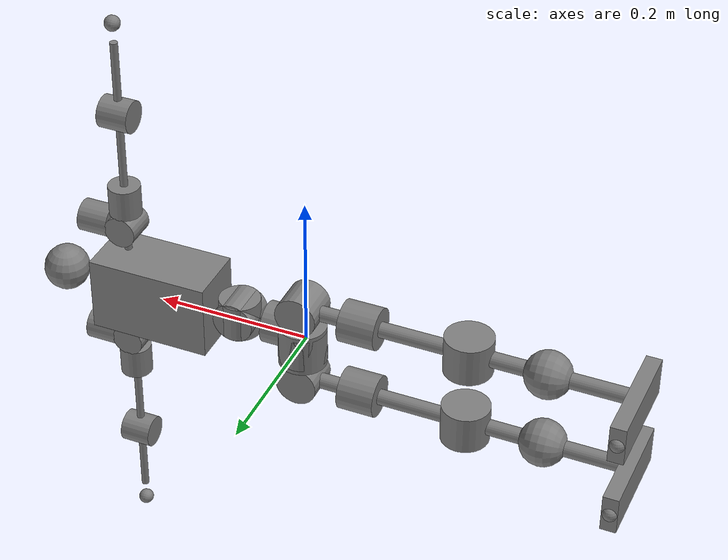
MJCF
<mujoco model="bvh_human_3dof_tpose">
  <compiler angle="radian" meshdir="meshes/"/>

  <worldbody>
    <body name="Hips">
      <inertial pos="0 0 0" mass="0.1" diaginertia="2.5e-05 2.5e-05 2.5e-05"/>
      <joint name="floating_base_joint" type="free"/>
      <geom size="0.025" contype="0" conaffinity="0" group="1" density="0"/>
      <geom size="0.025"/>
      <geom size="0.025"/>
      <body name="LeftUpLeg_rz" pos="0.00051729 0.0092891 0.0527425" quat="-2.32051e-08 0 0 -1">
        <inertial pos="0 0 -0.05" mass="0.5" diaginertia="0.0001922 0.0001922 0.0001922"/>
        <joint name="Hips_to_LeftUpLeg_rz" pos="0 0 0" axis="0 0 1" range="-3.14159 3.14159" actuatorfrcrange="-55 55"/>
        <geom size="0.031 0.025" pos="0 0 -0.05" type="cylinder" contype="0" conaffinity="0" group="1" density="0"/>
        <geom size="0.031 0.025" pos="0 0 -0.05" type="cylinder"/>
        <body name="LeftUpLeg_ry">
          <inertial pos="0 0 0" mass="0.4" diaginertia="0.00011664 0.00011664 0.00011664"/>
          <joint name="LeftUpLeg_rz_to_LeftUpLeg_ry" pos="0 0 0" axis="0 1 0" range="-3.14159 3.14159" actuatorfrcrange="-25 25"/>
          <geom size="0.027 0.024" quat="0.707107 -0.707107 0 0" type="cylinder" contype="0" conaffinity="0" group="1" density="0"/>
          <geom size="0.027 0.024" quat="0.707107 -0.707107 0 0" type="cylinder"/>
          <body name="LeftUpLeg" quat="-2.32051e-08 1 0 0">
            <inertial pos="0.08 0 0" mass="0.4" diaginertia="0.0016 0.0016 0.0016"/>
            <joint name="LeftUpLeg_ry_to_LeftUpLeg" pos="0 0 0" axis="1 0 0" range="-3.14159 3.14159" actuatorfrcrange="-25 25"/>
            <geom size="0.01 0.1" pos="0.1 0 0" quat="0.707388 0 0.706825 0" type="cylinder" contype="0" conaffinity="0" group="1" density="0"/>
            <geom size="0.027 0.024" pos="0.08 0 0" quat="0.707107 0 0.707107 0" type="cylinder" contype="0" conaffinity="0" group="1" density="0"/>
            <geom size="0.027 0.024" pos="0.08 0 0" quat="0.707107 0 0.707107 0" type="cylinder"/>
            <body name="LeftLeg_rz" pos="0.2175 -1e-07 1e-08">
              <inertial pos="0 0 0" mass="0.5" diaginertia="0.0001922 0.0001922 0.0001922"/>
              <joint name="LeftUpLeg_to_LeftLeg_rz" pos="0 0 0" axis="0 0 1" range="-3.14159 3.14159" actuatorfrcrange="-55 55"/>
              <geom size="0.031 0.025" type="cylinder" contype="0" conaffinity="0" group="1" density="0"/>
              <geom size="0.031 0.025" type="cylinder"/>
              <body name="LeftLeg_ry">
                <inertial pos="0 0 0" mass="0.01" diaginertia="4e-07 4e-07 4e-07"/>
                <body name="LeftLeg">
                  <inertial pos="0.1 0 0" mass="0.8" diaginertia="0.0032 0.0032 0.0032"/>
                  <geom size="0.01 0.1" pos="0.1 0 0" quat="0.707388 0 0.706825 0" type="cylinder" contype="0" conaffinity="0" group="1" density="0"/>
                  <geom size="0.03" pos="0.1 0 0" quat="0.707388 0 0.706825 0" contype="0" conaffinity="0" group="1" density="0"/>
                  <geom size="0.03" pos="0.1 0 0" quat="0.707388 0 0.706825 0"/>
                  <body name="LeftFoot_rz" pos="0.211861 -2e-08 1e-08" quat="0.707107 0 0 0.707107">
                    <inertial pos="0 0 0" mass="0.01" diaginertia="1.6e-06 1.6e-06 1.6e-06"/>
                    <joint name="LeftLeg_to_LeftFoot_rz" pos="0 0 0" axis="0 0 1" range="-3.14159 3.14159" actuatorfrcrange="-50 50"/>
                    <geom size="0.005 0.02" type="cylinder" contype="0" conaffinity="0" group="1" density="0"/>
                    <body name="LeftFoot_ry">
                      <inertial pos="0 0 0" mass="0.01" diaginertia="4e-07 4e-07 4e-07"/>
                      <body name="LeftFoot">
                        <inertial pos="0 0 0" mass="0.01" diaginertia="1.96e-05 1.96e-05 1.96e-05"/>
                        <joint name="LeftFoot_ry_to_LeftFoot" pos="0 0 0" axis="1 0 0" range="-3.14159 3.14159" actuatorfrcrange="-50 50"/>
                        <geom size="0.07 0.01 0.025" pos="0.02 0 0" type="box" contype="0" conaffinity="0" group="1" density="0"/>
                        <geom size="0.005 0.02" quat="0.707107 0 0.707107 0" type="cylinder" contype="0" conaffinity="0" group="1" density="0"/>
                        <geom size="0.07 0.01 0.025" pos="0.02 0 0" type="box"/>
                        <body name="LeftToe_rz" pos="0.0865 1e-08 3e-08">
                          <inertial pos="0 0 0" mass="0.01" diaginertia="4e-07 4e-07 4e-07"/>
                          <body name="LeftToe_ry">
                            <inertial pos="0 0 0" mass="0.01" diaginertia="4e-07 4e-07 4e-07"/>
                            <body name="LeftToe">
                              <inertial pos="0 0 0" mass="0.01" diaginertia="4e-07 4e-07 4e-07"/>
                              <geom size="0.01" contype="0" conaffinity="0" group="1" density="0"/>
                              <geom size="0.01"/>
                              <body name="LeftToe_End">
                                <inertial pos="0 0 0" mass="0.01" diaginertia="4e-07 4e-07 4e-07"/>
                                <geom size="0.01" contype="0" conaffinity="0" group="1" density="0"/>
                                <geom size="0.01"/>
                              </body>
                            </body>
                          </body>
                        </body>
                      </body>
                    </body>
                  </body>
                </body>
              </body>
            </body>
          </body>
        </body>
      </body>
      <body name="RightUpLeg_rz" pos="0.00051729 0.00928909 -0.0527425" quat="-2.32051e-08 0 0 -1">
        <inertial pos="0 0 0.05" mass="0.5" diaginertia="0.0001922 0.0001922 0.0001922"/>
        <joint name="Hips_to_RightUpLeg_rz" pos="0 0 0" axis="0 0 1" range="-3.14159 3.14159" actuatorfrcrange="-100 100"/>
        <geom size="0.031 0.025" pos="0 0 0.05" type="cylinder" contype="0" conaffinity="0" group="1" density="0"/>
        <geom size="0.031 0.025" pos="0 0 0.05" type="cylinder"/>
        <body name="RightUpLeg_ry">
          <inertial pos="0 0 0" mass="0.4" diaginertia="0.00011664 0.00011664 0.00011664"/>
          <joint name="RightUpLeg_rz_to_RightUpLeg_ry" pos="0 0 0" axis="0 1 0" range="-3.14159 3.14159" actuatorfrcrange="-100 100"/>
          <geom size="0.027 0.024" quat="0.707107 -0.707107 0 0" type="cylinder" contype="0" conaffinity="0" group="1" density="0"/>
          <geom size="0.027 0.024" quat="0.707107 -0.707107 0 0" type="cylinder"/>
          <body name="RightUpLeg" quat="-2.32051e-08 -1 0 0">
            <inertial pos="0.08 0 0" mass="0.4" diaginertia="0.0016 0.0016 0.0016"/>
            <joint name="RightUpLeg_ry_to_RightUpLeg" pos="0 0 0" axis="1 0 0" range="-3.14159 3.14159" actuatorfrcrange="-100 100"/>
            <geom size="0.01 0.1" pos="0.1 0 0" quat="0.707388 0 0.706825 0" type="cylinder" contype="0" conaffinity="0" group="1" density="0"/>
            <geom size="0.027 0.024" pos="0.08 0 0" quat="0.707107 0 0.707107 0" type="cylinder" contype="0" conaffinity="0" group="1" density="0"/>
            <geom size="0.027 0.024" pos="0.08 0 0" quat="0.707107 0 0.707107 0" type="cylinder"/>
            <body name="RightLeg_rz" pos="0.2175 -7e-08 5e-08">
              <inertial pos="0 0 0" mass="0.5" diaginertia="0.0001922 0.0001922 0.0001922"/>
              <joint name="RightUpLeg_to_RightLeg_rz" pos="0 0 0" axis="0 0 1" range="-3.14159 3.14159" actuatorfrcrange="-100 100"/>
              <geom size="0.031 0.025" type="cylinder" contype="0" conaffinity="0" group="1" density="0"/>
              <geom size="0.031 0.025" type="cylinder"/>
              <body name="RightLeg_ry">
                <inertial pos="0 0 0" mass="0.01" diaginertia="4e-07 4e-07 4e-07"/>
                <body name="RightLeg">
                  <inertial pos="0.1 0 0" mass="0.8" diaginertia="0.0032 0.0032 0.0032"/>
                  <geom size="0.01 0.1" pos="0.1 0 0" quat="0.707388 0 0.706825 0" type="cylinder" contype="0" conaffinity="0" group="1" density="0"/>
                  <geom size="0.03" pos="0.1 0 0" quat="0.707388 0 0.706825 0" contype="0" conaffinity="0" group="1" density="0"/>
                  <geom size="0.03" pos="0.1 0 0" quat="0.707388 0 0.706825 0"/>
                  <body name="RightFoot_rz" pos="0.211861 -4e-08 5e-08" quat="0.707107 0 0 0.707107">
                    <inertial pos="0 0 0" mass="0.01" diaginertia="1.6e-06 1.6e-06 1.6e-06"/>
                    <joint name="RightLeg_to_RightFoot_rz" pos="0 0 0" axis="0 0 1" range="-3.14159 3.14159" actuatorfrcrange="-100 100"/>
                    <geom size="0.005 0.02" type="cylinder" contype="0" conaffinity="0" group="1" density="0"/>
                    <body name="RightFoot_ry">
                      <inertial pos="0 0 0" mass="0.01" diaginertia="4e-07 4e-07 4e-07"/>
                      <body name="RightFoot">
                        <inertial pos="0 0 0" mass="0.01" diaginertia="1.96e-05 1.96e-05 1.96e-05"/>
                        <joint name="RightFoot_ry_to_RightFoot" pos="0 0 0" axis="1 0 0" range="-3.14159 3.14159" actuatorfrcrange="-100 100"/>
                        <geom size="0.07 0.01 0.025" pos="0.02 0 0" type="box" contype="0" conaffinity="0" group="1" density="0"/>
                        <geom size="0.005 0.02" quat="0.707107 0 0.707107 0" type="cylinder" contype="0" conaffinity="0" group="1" density="0"/>
                        <geom size="0.07 0.01 0.025" pos="0.02 0 0" type="box"/>
                        <body name="RightToe_rz" pos="0.0865 -2e-08 0">
                          <inertial pos="0 0 0" mass="0.01" diaginertia="4e-07 4e-07 4e-07"/>
                          <body name="RightToe_ry">
                            <inertial pos="0 0 0" mass="0.01" diaginertia="4e-07 4e-07 4e-07"/>
                            <body name="RightToe">
                              <inertial pos="0 0 0" mass="0.01" diaginertia="4e-07 4e-07 4e-07"/>
                              <geom size="0.01" contype="0" conaffinity="0" group="1" density="0"/>
                              <geom size="0.01"/>
                              <body name="RightToe_End">
                                <inertial pos="0 0 0" mass="0.01" diaginertia="4e-07 4e-07 4e-07"/>
                                <geom size="0.01" contype="0" conaffinity="0" group="1" density="0"/>
                                <geom size="0.01"/>
                              </body>
                            </body>
                          </body>
                        </body>
                      </body>
                    </body>
                  </body>
                </body>
              </body>
            </body>
          </body>
        </body>
      </body>
      <body name="Spine_rz" pos="0.0345098 -0.0130187 1e-08">
        <inertial pos="0 0 0" mass="0.01" diaginertia="4e-07 4e-07 4e-07"/>
        <body name="Spine_ry">
          <inertial pos="0 0 0" mass="0.01" diaginertia="4e-07 4e-07 4e-07"/>
          <body name="Spine">
            <inertial pos="0 0 0" mass="0.4" diaginertia="1.6e-05 1.6e-05 1.6e-05"/>
            <joint name="Spine_ry_to_Spine" pos="0 0 0" axis="1 0 0" range="-3.14159 3.14159" actuatorfrcrange="-100 100"/>
            <geom size="0.01" contype="0" conaffinity="0" group="1" density="0"/>
            <geom size="0.027 0.024" quat="0.707107 0 0.707107 0" type="cylinder" contype="0" conaffinity="0" group="1" density="0"/>
            <geom size="0.01"/>
            <geom size="0.027 0.024" quat="0.707107 0 0.707107 0" type="cylinder"/>
            <body name="Spine1_rz" pos="0.0629405 8e-08 -2e-08">
              <inertial pos="0 0 0" mass="0.4" diaginertia="0.00011664 0.00011664 0.00011664"/>
              <joint name="Spine_to_Spine1_rz" pos="0 0 0" axis="0 0 1" range="-3.14159 3.14159" actuatorfrcrange="-100 100"/>
              <geom size="0.027 0.024" type="cylinder" contype="0" conaffinity="0" group="1" density="0"/>
              <geom size="0.027 0.024" type="cylinder"/>
              <body name="Spine1_ry">
                <inertial pos="0 0 0" mass="0.4" diaginertia="0.00011664 0.00011664 0.00011664"/>
                <joint name="Spine1_rz_to_Spine1_ry" pos="0 0 0" axis="0 1 0" range="-3.14159 3.14159" actuatorfrcrange="-100 100"/>
                <geom size="0.027 0.024" quat="0.707107 -0.707107 0 0" type="cylinder" contype="0" conaffinity="0" group="1" density="0"/>
                <geom size="0.027 0.024" quat="0.707107 -0.707107 0 0" type="cylinder"/>
                <body name="Spine1">
                  <inertial pos="0 0 0" mass="0.01" diaginertia="4e-07 4e-07 4e-07"/>
                  <geom size="0.01" contype="0" conaffinity="0" group="1" density="0"/>
                  <geom size="0.01"/>
                  <body name="Spine2_rz" pos="0.061716 -6e-08 -2e-08">
                    <inertial pos="0 0 0" mass="0.01" diaginertia="4e-07 4e-07 4e-07"/>
                    <body name="Spine2_ry">
                      <inertial pos="0 0 0" mass="0.01" diaginertia="4e-07 4e-07 4e-07"/>
                      <body name="Spine2">
                        <inertial pos="0.05 0 0" mass="2.01" diaginertia="2.56e-05 2.56e-05 2.56e-05"/>
                        <geom size="0.05 0.04 0.08" pos="0.05 0 0" quat="0.707388 0 0.706825 0" type="box" contype="0" conaffinity="0" group="1" density="0"/>
                        <geom size="0.05 0.04 0.08" pos="0.05 0 0" quat="0.707388 0 0.706825 0" type="box"/>
                        <body name="Neck_rz" pos="0.129164 4e-08 3e-08">
                          <inertial pos="0 0 0" mass="0.01" diaginertia="4e-07 4e-07 4e-07"/>
                          <body name="Neck_ry">
                            <inertial pos="0 0 0" mass="0.01" diaginertia="4e-07 4e-07 4e-07"/>
                            <body name="Neck">
                              <inertial pos="0 0 0" mass="0.01" diaginertia="4e-07 4e-07 4e-07"/>
                              <geom size="0.01" contype="0" conaffinity="0" group="1" density="0"/>
                              <geom size="0.01"/>
                              <body name="Head_rz" pos="0.0588331 -2e-08 -1e-08">
                                <inertial pos="0 0 0" mass="0.01" diaginertia="4e-07 4e-07 4e-07"/>
                                <body name="Head_ry">
                                  <inertial pos="0 0 0" mass="0.01" diaginertia="4e-07 4e-07 4e-07"/>
                                  <body name="Head">
                                    <inertial pos="0 0 0" mass="0.01" diaginertia="3.6e-06 3.6e-06 3.6e-06"/>
                                    <geom size="0.03" contype="0" conaffinity="0" group="1" density="0"/>
                                    <geom size="0.03"/>
                                    <body name="Head_End">
                                      <inertial pos="0 0 0" mass="0.01" diaginertia="4e-07 4e-07 4e-07"/>
                                      <geom size="0.01" contype="0" conaffinity="0" group="1" density="0"/>
                                      <geom size="0.01"/>
                                    </body>
                                  </body>
                                </body>
                              </body>
                            </body>
                          </body>
                        </body>
                        <body name="LeftShoulder_rz" pos="0.0987295 -0.00740185 0.0300006" quat="0.707107 0 0 -0.707107">
                          <inertial pos="0 0 0" mass="0.01" diaginertia="4e-07 4e-07 4e-07"/>
                          <body name="LeftShoulder_ry" quat="0.707107 0 -0.707107 0">
                            <inertial pos="0 0 0" mass="0.01" diaginertia="4e-07 4e-07 4e-07"/>
                            <body name="LeftShoulder" quat="0.707107 -0.707107 0 0">
                              <inertial pos="0 0 0" mass="0.01" diaginertia="2.5e-06 2.5e-06 2.5e-06"/>
                              <geom size="0.005 0.025" pos="0.025 0 0" quat="0.707388 0 0.706825 0" type="cylinder" contype="0" conaffinity="0" group="1" density="0"/>
                              <body name="LeftArm_rz" pos="0.0564206 -6e-08 -4e-08">
                                <inertial pos="0 0 0.04" mass="0.3" diaginertia="5.292e-05 5.292e-05 5.292e-05"/>
                                <joint name="LeftShoulder_to_LeftArm_rz" pos="0 0 0" axis="0 0 1" range="-3.14159 3.14159" actuatorfrcrange="-100 100"/>
                                <geom size="0.021 0.0205" pos="0 0 0.04" type="cylinder" contype="0" conaffinity="0" group="1" density="0"/>
                                <geom size="0.021 0.0205" pos="0 0 0.04" type="cylinder"/>
                                <body name="LeftArm_ry">
                                  <inertial pos="0 0 0" mass="0.3" diaginertia="5.292e-05 5.292e-05 5.292e-05"/>
                                  <joint name="LeftArm_rz_to_LeftArm_ry" pos="0 0 0" axis="0 1 0" range="-3.14159 3.14159" actuatorfrcrange="-100 100"/>
                                  <geom size="0.021 0.0205" quat="0.707107 -0.707107 0 0" type="cylinder" contype="0" conaffinity="0" group="1" density="0"/>
                                  <geom size="0.021 0.0205" quat="0.707107 -0.707107 0 0" type="cylinder"/>
                                  <body name="LeftArm">
                                    <inertial pos="0.04 0 0" mass="0.3" diaginertia="0.000675 0.000675 0.000675"/>
                                    <joint name="LeftArm_ry_to_LeftArm" pos="0 0 0" axis="1 0 0" range="-3.14159 3.14159" actuatorfrcrange="-100 100"/>
                                    <geom size="0.005 0.075" pos="0.075 0 0" quat="0.707388 0 0.706825 0" type="cylinder" contype="0" conaffinity="0" group="1" density="0"/>
                                    <geom size="0.021 0.0205" pos="0.04 0 0" quat="0.707107 0 0.707107 0" type="cylinder" contype="0" conaffinity="0" group="1" density="0"/>
                                    <geom size="0.021 0.0205" pos="0.04 0 0" quat="0.707107 0 0.707107 0" type="cylinder"/>
                                    <body name="LeftForeArm_rz" pos="0.165 1e-08 1.1e-07">
                                      <inertial pos="0 0 0" mass="0.3" diaginertia="5.292e-05 5.292e-05 5.292e-05"/>
                                      <joint name="LeftArm_to_LeftForeArm_rz" pos="0 0 0" axis="0 0 1" range="-3.14159 3.14159" actuatorfrcrange="-100 100"/>
                                      <geom size="0.021 0.0205" type="cylinder" contype="0" conaffinity="0" group="1" density="0"/>
                                      <geom size="0.021 0.0205" type="cylinder"/>
                                      <body name="LeftForeArm_ry">
                                        <inertial pos="0 0 0" mass="0.01" diaginertia="4e-07 4e-07 4e-07"/>
                                        <body name="LeftForeArm">
                                          <inertial pos="0 0 0" mass="0.01" diaginertia="1e-05 1e-05 1e-05"/>
                                          <geom size="0.005 0.05" pos="0.05 0 0" quat="0.707388 0 0.706825 0" type="cylinder" contype="0" conaffinity="0" group="1" density="0"/>
                                          <body name="LeftHand_rz" pos="0.126 3e-08 7e-08">
                                            <inertial pos="0 0 0" mass="0.01" diaginertia="4e-07 4e-07 4e-07"/>
                                            <body name="LeftHand_ry">
                                              <inertial pos="0 0 0" mass="0.01" diaginertia="4e-07 4e-07 4e-07"/>
                                              <body name="LeftHand">
                                                <inertial pos="0 0 0" mass="0.01" diaginertia="4e-07 4e-07 4e-07"/>
                                                <geom size="0.01" contype="0" conaffinity="0" group="1" density="0"/>
                                                <geom size="0.01"/>
                                                <body name="LeftHand_End">
                                                  <inertial pos="0 0 0" mass="0.01" diaginertia="4e-07 4e-07 4e-07"/>
                                                  <geom size="0.01" contype="0" conaffinity="0" group="1" density="0"/>
                                                  <geom size="0.01"/>
                                                </body>
                                              </body>
                                            </body>
                                          </body>
                                        </body>
                                      </body>
                                    </body>
                                  </body>
                                </body>
                              </body>
                            </body>
                          </body>
                        </body>
                        <body name="RightShoulder_rz" pos="0.0987305 -0.00740189 -0.0300003" quat="0.707107 0 0 0.707107">
                          <inertial pos="0 0 0" mass="0.01" diaginertia="4e-07 4e-07 4e-07"/>
                          <body name="RightShoulder_ry" quat="0.707107 0 0.707107 0">
                            <inertial pos="0 0 0" mass="0.01" diaginertia="4e-07 4e-07 4e-07"/>
                            <body name="RightShoulder" quat="0.707107 -0.707107 0 0">
                              <inertial pos="0 0 0" mass="0.01" diaginertia="2.5e-06 2.5e-06 2.5e-06"/>
                              <geom size="0.005 0.025" pos="0.025 0 0" quat="0.707388 0 0.706825 0" type="cylinder" contype="0" conaffinity="0" group="1" density="0"/>
                              <body name="RightArm_rz" pos="0.0564207 -1.7e-07 -4e-08">
                                <inertial pos="0 0 -0.04" mass="0.3" diaginertia="5.292e-05 5.292e-05 5.292e-05"/>
                                <joint name="RightShoulder_to_RightArm_rz" pos="0 0 0" axis="0 0 1" range="-3.14159 3.14159" actuatorfrcrange="-100 100"/>
                                <geom size="0.021 0.0205" pos="0 0 -0.04" type="cylinder" contype="0" conaffinity="0" group="1" density="0"/>
                                <geom size="0.021 0.0205" pos="0 0 -0.04" type="cylinder"/>
                                <body name="RightArm_ry">
                                  <inertial pos="0 0 0" mass="0.3" diaginertia="5.292e-05 5.292e-05 5.292e-05"/>
                                  <joint name="RightArm_rz_to_RightArm_ry" pos="0 0 0" axis="0 1 0" range="-3.14159 3.14159" actuatorfrcrange="-100 100"/>
                                  <geom size="0.021 0.0205" quat="0.707107 -0.707107 0 0" type="cylinder" contype="0" conaffinity="0" group="1" density="0"/>
                                  <geom size="0.021 0.0205" quat="0.707107 -0.707107 0 0" type="cylinder"/>
                                  <body name="RightArm">
                                    <inertial pos="0.04 0 0" mass="0.3" diaginertia="0.000675 0.000675 0.000675"/>
                                    <joint name="RightArm_ry_to_RightArm" pos="0 0 0" axis="1 0 0" range="-3.14159 3.14159" actuatorfrcrange="-100 100"/>
                                    <geom size="0.005 0.075" pos="0.075 0 0" quat="0.707388 0 0.706825 0" type="cylinder" contype="0" conaffinity="0" group="1" density="0"/>
                                    <geom size="0.021 0.0205" pos="0.04 0 0" quat="0.707107 0 0.707107 0" type="cylinder" contype="0" conaffinity="0" group="1" density="0"/>
                                    <geom size="0.021 0.0205" pos="0.04 0 0" quat="0.707107 0 0.707107 0" type="cylinder"/>
                                    <body name="RightForeArm_rz" pos="0.165 1e-07 3e-08">
                                      <inertial pos="0 0 0" mass="0.3" diaginertia="5.292e-05 5.292e-05 5.292e-05"/>
                                      <joint name="RightArm_to_RightForeArm_rz" pos="0 0 0" axis="0 0 1" range="-3.14159 3.14159" actuatorfrcrange="-100 100"/>
                                      <geom size="0.021 0.0205" type="cylinder" contype="0" conaffinity="0" group="1" density="0"/>
                                      <geom size="0.021 0.0205" type="cylinder"/>
                                      <body name="RightForeArm_ry">
                                        <inertial pos="0 0 0" mass="0.01" diaginertia="4e-07 4e-07 4e-07"/>
                                        <body name="RightForeArm">
                                          <inertial pos="0 0 0" mass="0.01" diaginertia="1e-05 1e-05 1e-05"/>
                                          <geom size="0.005 0.05" pos="0.05 0 0" quat="0.707388 0 0.706825 0" type="cylinder" contype="0" conaffinity="0" group="1" density="0"/>
                                          <body name="RightHand_rz" pos="0.125999 7e-07 2.16e-06">
                                            <inertial pos="0 0 0" mass="0.01" diaginertia="4e-07 4e-07 4e-07"/>
                                            <body name="RightHand_ry">
                                              <inertial pos="0 0 0" mass="0.01" diaginertia="4e-07 4e-07 4e-07"/>
                                              <body name="RightHand">
                                                <inertial pos="0 0 0" mass="0.01" diaginertia="4e-07 4e-07 4e-07"/>
                                                <geom size="0.01" contype="0" conaffinity="0" group="1" density="0"/>
                                                <geom size="0.01"/>
                                                <body name="RightHand_End">
                                                  <inertial pos="0 0 0" mass="0.01" diaginertia="4e-07 4e-07 4e-07"/>
                                                  <geom size="0.01" contype="0" conaffinity="0" group="1" density="0"/>
                                                  <geom size="0.01"/>
                                                </body>
                                              </body>
                                            </body>
                                          </body>
                                        </body>
                                      </body>
                                    </body>
                                  </body>
                                </body>
                              </body>
                            </body>
                          </body>
                        </body>
                      </body>
                    </body>
                  </body>
                </body>
              </body>
            </body>
          </body>
        </body>
      </body>
    </body>
  </worldbody>
</mujoco>
